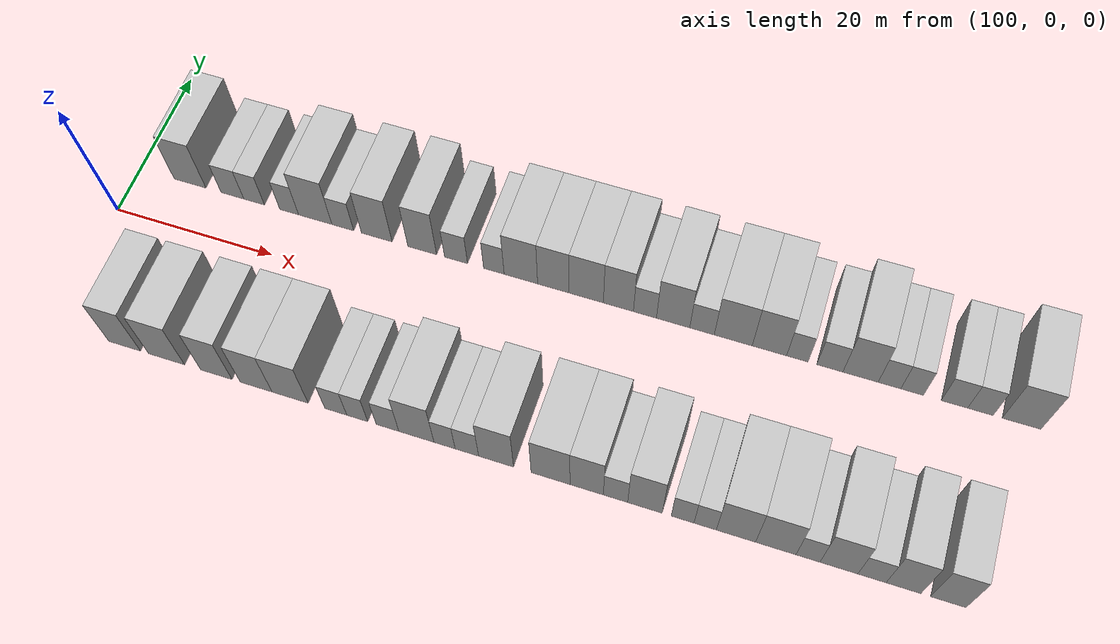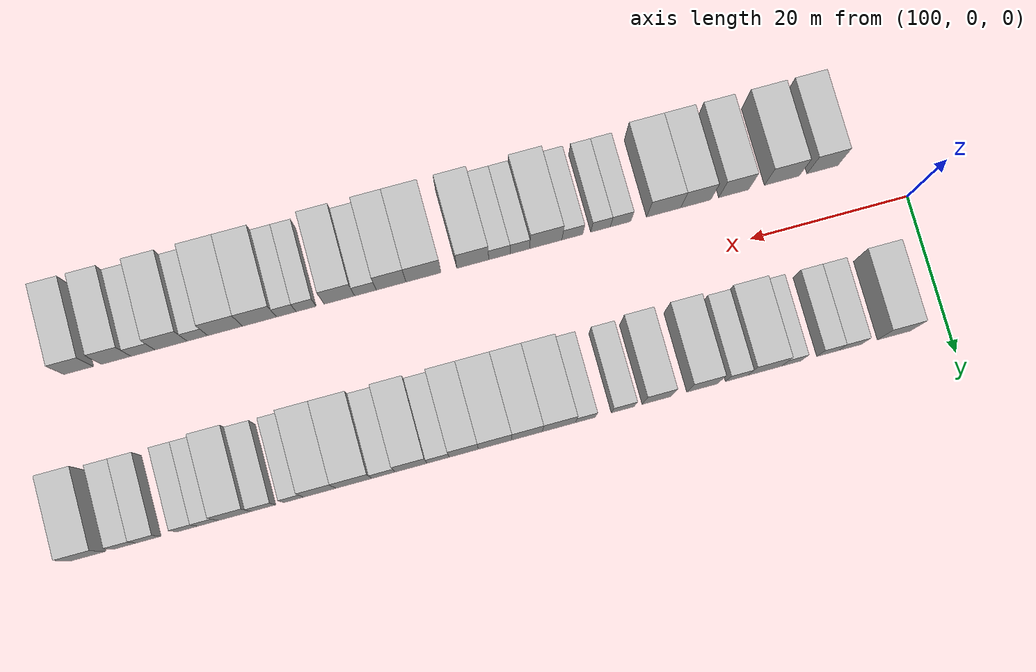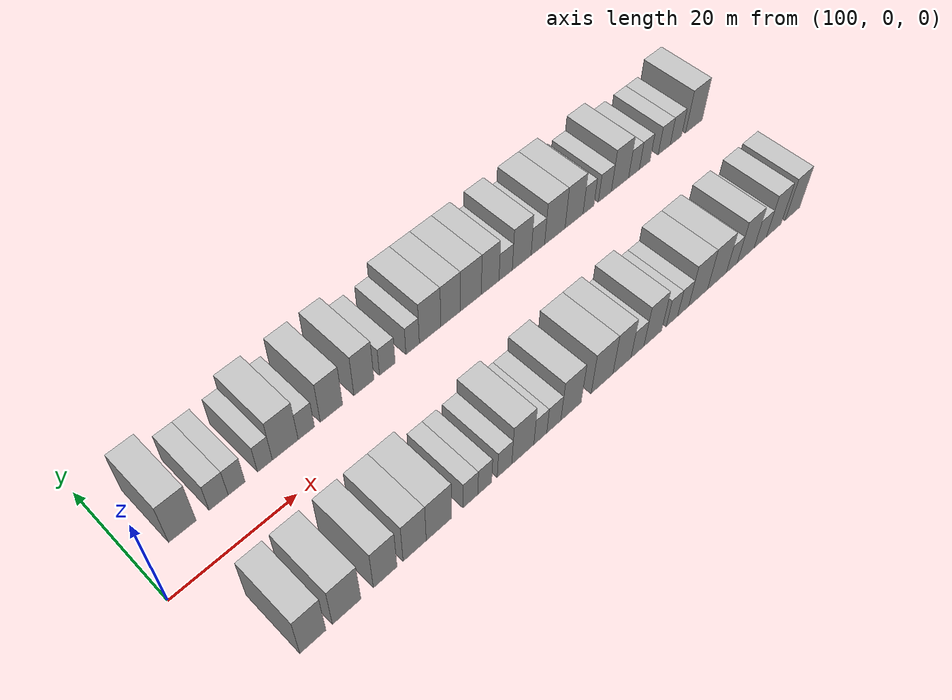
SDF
<sdf version="1.6">
 <world name="default">
  <model name="building_26">
   <static>1</static>
   <pose>106.6128 11.0000 0 0.000000 0.000000 1.570796</pose>
   <link name="link">
    <pose>0 0 4.50 0 0 0</pose>
    <collision name="collision"><geometry><box><size>10.0000 4.2061 9.0000</size></box></geometry></collision>
    <visual name="visual">
     <cast_shadows>0</cast_shadows>
     <geometry><box><size>10.0000 4.2061 9.0000</size></box></geometry>
     <material>
      <script>
       <uri>model://HANNAS_wall/materials/scripts</uri>
       <uri>model://HANNAS_wall/materials/textures</uri>
       <name>vrc/HANNAS_wall</name>
      </script>
     </material>
    </visual>
   </link>
  </model>
  <model name="building_27">
   <static>1</static>
   <pose>112.2107 11.0000 0 0.000000 0.000000 1.570796</pose>
   <link name="link">
    <pose>0 0 3.00 0 0 0</pose>
    <collision name="collision"><geometry><box><size>10.0000 2.9899 6.0000</size></box></geometry></collision>
    <visual name="visual">
     <cast_shadows>0</cast_shadows>
     <geometry><box><size>10.0000 2.9899 6.0000</size></box></geometry>
     <material>
      <script>
       <uri>model://HANNAS_wall/materials/scripts</uri>
       <uri>model://HANNAS_wall/materials/textures</uri>
       <name>vrc/HANNAS_wall</name>
      </script>
     </material>
    </visual>
   </link>
  </model>
  <model name="building_28">
   <static>1</static>
   <pose>115.0543 11.0000 0 0.000000 0.000000 1.570796</pose>
   <link name="link">
    <pose>0 0 3.00 0 0 0</pose>
    <collision name="collision"><geometry><box><size>10.0000 2.6972 6.0000</size></box></geometry></collision>
    <visual name="visual">
     <cast_shadows>0</cast_shadows>
     <geometry><box><size>10.0000 2.6972 6.0000</size></box></geometry>
     <material>
      <script>
       <uri>model://HANNAS_wall/materials/scripts</uri>
       <uri>model://HANNAS_wall/materials/textures</uri>
       <name>vrc/HANNAS_wall</name>
      </script>
     </material>
    </visual>
   </link>
  </model>
  <model name="building_29">
   <static>1</static>
   <pose>119.6240 11.0000 0 0.000000 0.000000 1.570796</pose>
   <link name="link">
    <pose>0 0 3.00 0 0 0</pose>
    <collision name="collision"><geometry><box><size>10.0000 2.4422 6.0000</size></box></geometry></collision>
    <visual name="visual">
     <cast_shadows>0</cast_shadows>
     <geometry><box><size>10.0000 2.4422 6.0000</size></box></geometry>
     <material>
      <script>
       <uri>model://HANNAS_wall/materials/scripts</uri>
       <uri>model://HANNAS_wall/materials/textures</uri>
       <name>vrc/HANNAS_wall</name>
      </script>
     </material>
    </visual>
   </link>
  </model>
  <model name="building_30">
   <static>1</static>
   <pose>122.9964 11.0000 0 0.000000 0.000000 1.570796</pose>
   <link name="link">
    <pose>0 0 4.50 0 0 0</pose>
    <collision name="collision"><geometry><box><size>10.0000 4.3027 9.0000</size></box></geometry></collision>
    <visual name="visual">
     <cast_shadows>0</cast_shadows>
     <geometry><box><size>10.0000 4.3027 9.0000</size></box></geometry>
     <material>
      <script>
       <uri>model://HANNAS_wall/materials/scripts</uri>
       <uri>model://HANNAS_wall/materials/textures</uri>
       <name>vrc/HANNAS_wall</name>
      </script>
     </material>
    </visual>
   </link>
  </model>
  <model name="building_31">
   <static>1</static>
   <pose>126.5361 11.0000 0 0.000000 0.000000 1.570796</pose>
   <link name="link">
    <pose>0 0 3.00 0 0 0</pose>
    <collision name="collision"><geometry><box><size>10.0000 2.7767 6.0000</size></box></geometry></collision>
    <visual name="visual">
     <cast_shadows>0</cast_shadows>
     <geometry><box><size>10.0000 2.7767 6.0000</size></box></geometry>
     <material>
      <script>
       <uri>model://HANNAS_wall/materials/scripts</uri>
       <uri>model://HANNAS_wall/materials/textures</uri>
       <name>vrc/HANNAS_wall</name>
      </script>
     </material>
    </visual>
   </link>
  </model>
  <model name="building_32">
   <static>1</static>
   <pose>130.8658 11.0000 0 0.000000 0.000000 1.570796</pose>
   <link name="link">
    <pose>0 0 4.50 0 0 0</pose>
    <collision name="collision"><geometry><box><size>10.0000 3.8825 9.0000</size></box></geometry></collision>
    <visual name="visual">
     <cast_shadows>0</cast_shadows>
     <geometry><box><size>10.0000 3.8825 9.0000</size></box></geometry>
     <material>
      <script>
       <uri>model://HANNAS_wall/materials/scripts</uri>
       <uri>model://HANNAS_wall/materials/textures</uri>
       <name>vrc/HANNAS_wall</name>
      </script>
     </material>
    </visual>
   </link>
  </model>
  <model name="building_33">
   <static>1</static>
   <pose>136.6136 11.0000 0 0.000000 0.000000 1.570796</pose>
   <link name="link">
    <pose>0 0 4.50 0 0 0</pose>
    <collision name="collision"><geometry><box><size>10.0000 3.6131 9.0000</size></box></geometry></collision>
    <visual name="visual">
     <cast_shadows>0</cast_shadows>
     <geometry><box><size>10.0000 3.6131 9.0000</size></box></geometry>
     <material>
      <script>
       <uri>model://HANNAS_wall/materials/scripts</uri>
       <uri>model://HANNAS_wall/materials/textures</uri>
       <name>vrc/HANNAS_wall</name>
      </script>
     </material>
    </visual>
   </link>
  </model>
  <model name="building_34">
   <static>1</static>
   <pose>140.8536 11.0000 0 0.000000 0.000000 1.570796</pose>
   <link name="link">
    <pose>0 0 3.00 0 0 0</pose>
    <collision name="collision"><geometry><box><size>10.0000 2.8669 6.0000</size></box></geometry></collision>
    <visual name="visual">
     <cast_shadows>0</cast_shadows>
     <geometry><box><size>10.0000 2.8669 6.0000</size></box></geometry>
     <material>
      <script>
       <uri>model://HANNAS_wall/materials/scripts</uri>
       <uri>model://HANNAS_wall/materials/textures</uri>
       <name>vrc/HANNAS_wall</name>
      </script>
     </material>
    </visual>
   </link>
  </model>
  <model name="building_35">
   <static>1</static>
   <pose>145.5535 11.0000 0 0.000000 0.000000 1.570796</pose>
   <link name="link">
    <pose>0 0 3.00 0 0 0</pose>
    <collision name="collision"><geometry><box><size>10.0000 2.5329 6.0000</size></box></geometry></collision>
    <visual name="visual">
     <cast_shadows>0</cast_shadows>
     <geometry><box><size>10.0000 2.5329 6.0000</size></box></geometry>
     <material>
      <script>
       <uri>model://HANNAS_wall/materials/scripts</uri>
       <uri>model://HANNAS_wall/materials/textures</uri>
       <name>vrc/HANNAS_wall</name>
      </script>
     </material>
    </visual>
   </link>
  </model>
  <model name="building_36">
   <static>1</static>
   <pose>148.8755 11.0000 0 0.000000 0.000000 1.570796</pose>
   <link name="link">
    <pose>0 0 4.50 0 0 0</pose>
    <collision name="collision"><geometry><box><size>10.0000 4.1110 9.0000</size></box></geometry></collision>
    <visual name="visual">
     <cast_shadows>0</cast_shadows>
     <geometry><box><size>10.0000 4.1110 9.0000</size></box></geometry>
     <material>
      <script>
       <uri>model://HANNAS_wall/materials/scripts</uri>
       <uri>model://HANNAS_wall/materials/textures</uri>
       <name>vrc/HANNAS_wall</name>
      </script>
     </material>
    </visual>
   </link>
  </model>
  <model name="building_37">
   <static>1</static>
   <pose>152.8462 11.0000 0 0.000000 0.000000 1.570796</pose>
   <link name="link">
    <pose>0 0 4.50 0 0 0</pose>
    <collision name="collision"><geometry><box><size>10.0000 3.8305 9.0000</size></box></geometry></collision>
    <visual name="visual">
     <cast_shadows>0</cast_shadows>
     <geometry><box><size>10.0000 3.8305 9.0000</size></box></geometry>
     <material>
      <script>
       <uri>model://HANNAS_wall/materials/scripts</uri>
       <uri>model://HANNAS_wall/materials/textures</uri>
       <name>vrc/HANNAS_wall</name>
      </script>
     </material>
    </visual>
   </link>
  </model>
  <model name="building_38">
   <static>1</static>
   <pose>156.8395 11.0000 0 0.000000 0.000000 1.570796</pose>
   <link name="link">
    <pose>0 0 4.50 0 0 0</pose>
    <collision name="collision"><geometry><box><size>10.0000 4.1561 9.0000</size></box></geometry></collision>
    <visual name="visual">
     <cast_shadows>0</cast_shadows>
     <geometry><box><size>10.0000 4.1561 9.0000</size></box></geometry>
     <material>
      <script>
       <uri>model://HANNAS_wall/materials/scripts</uri>
       <uri>model://HANNAS_wall/materials/textures</uri>
       <name>vrc/HANNAS_wall</name>
      </script>
     </material>
    </visual>
   </link>
  </model>
  <model name="building_39">
   <static>1</static>
   <pose>160.7221 11.0000 0 0.000000 0.000000 1.570796</pose>
   <link name="link">
    <pose>0 0 4.50 0 0 0</pose>
    <collision name="collision"><geometry><box><size>10.0000 3.6091 9.0000</size></box></geometry></collision>
    <visual name="visual">
     <cast_shadows>0</cast_shadows>
     <geometry><box><size>10.0000 3.6091 9.0000</size></box></geometry>
     <material>
      <script>
       <uri>model://HANNAS_wall/materials/scripts</uri>
       <uri>model://HANNAS_wall/materials/textures</uri>
       <name>vrc/HANNAS_wall</name>
      </script>
     </material>
    </visual>
   </link>
  </model>
  <model name="building_40">
   <static>1</static>
   <pose>163.9028 11.0000 0 0.000000 0.000000 1.570796</pose>
   <link name="link">
    <pose>0 0 3.00 0 0 0</pose>
    <collision name="collision"><geometry><box><size>10.0000 2.7522 6.0000</size></box></geometry></collision>
    <visual name="visual">
     <cast_shadows>0</cast_shadows>
     <geometry><box><size>10.0000 2.7522 6.0000</size></box></geometry>
     <material>
      <script>
       <uri>model://HANNAS_wall/materials/scripts</uri>
       <uri>model://HANNAS_wall/materials/textures</uri>
       <name>vrc/HANNAS_wall</name>
      </script>
     </material>
    </visual>
   </link>
  </model>
  <model name="building_41">
   <static>1</static>
   <pose>167.2548 11.0000 0 0.000000 0.000000 1.570796</pose>
   <link name="link">
    <pose>0 0 4.50 0 0 0</pose>
    <collision name="collision"><geometry><box><size>10.0000 3.9519 9.0000</size></box></geometry></collision>
    <visual name="visual">
     <cast_shadows>0</cast_shadows>
     <geometry><box><size>10.0000 3.9519 9.0000</size></box></geometry>
     <material>
      <script>
       <uri>model://HANNAS_wall/materials/scripts</uri>
       <uri>model://HANNAS_wall/materials/textures</uri>
       <name>vrc/HANNAS_wall</name>
      </script>
     </material>
    </visual>
   </link>
  </model>
  <model name="building_42">
   <static>1</static>
   <pose>170.6794 11.0000 0 0.000000 0.000000 1.570796</pose>
   <link name="link">
    <pose>0 0 3.00 0 0 0</pose>
    <collision name="collision"><geometry><box><size>10.0000 2.8972 6.0000</size></box></geometry></collision>
    <visual name="visual">
     <cast_shadows>0</cast_shadows>
     <geometry><box><size>10.0000 2.8972 6.0000</size></box></geometry>
     <material>
      <script>
       <uri>model://HANNAS_wall/materials/scripts</uri>
       <uri>model://HANNAS_wall/materials/textures</uri>
       <name>vrc/HANNAS_wall</name>
      </script>
     </material>
    </visual>
   </link>
  </model>
  <model name="building_43">
   <static>1</static>
   <pose>174.3533 11.0000 0 0.000000 0.000000 1.570796</pose>
   <link name="link">
    <pose>0 0 4.50 0 0 0</pose>
    <collision name="collision"><geometry><box><size>10.0000 4.4507 9.0000</size></box></geometry></collision>
    <visual name="visual">
     <cast_shadows>0</cast_shadows>
     <geometry><box><size>10.0000 4.4507 9.0000</size></box></geometry>
     <material>
      <script>
       <uri>model://HANNAS_wall/materials/scripts</uri>
       <uri>model://HANNAS_wall/materials/textures</uri>
       <name>vrc/HANNAS_wall</name>
      </script>
     </material>
    </visual>
   </link>
  </model>
  <model name="building_44">
   <static>1</static>
   <pose>178.5750 11.0000 0 0.000000 0.000000 1.570796</pose>
   <link name="link">
    <pose>0 0 4.50 0 0 0</pose>
    <collision name="collision"><geometry><box><size>10.0000 3.9926 9.0000</size></box></geometry></collision>
    <visual name="visual">
     <cast_shadows>0</cast_shadows>
     <geometry><box><size>10.0000 3.9926 9.0000</size></box></geometry>
     <material>
      <script>
       <uri>model://HANNAS_wall/materials/scripts</uri>
       <uri>model://HANNAS_wall/materials/textures</uri>
       <name>vrc/HANNAS_wall</name>
      </script>
     </material>
    </visual>
   </link>
  </model>
  <model name="building_45">
   <static>1</static>
   <pose>181.8112 11.0000 0 0.000000 0.000000 1.570796</pose>
   <link name="link">
    <pose>0 0 3.00 0 0 0</pose>
    <collision name="collision"><geometry><box><size>10.0000 2.4799 6.0000</size></box></geometry></collision>
    <visual name="visual">
     <cast_shadows>0</cast_shadows>
     <geometry><box><size>10.0000 2.4799 6.0000</size></box></geometry>
     <material>
      <script>
       <uri>model://HANNAS_wall/materials/scripts</uri>
       <uri>model://HANNAS_wall/materials/textures</uri>
       <name>vrc/HANNAS_wall</name>
      </script>
     </material>
    </visual>
   </link>
  </model>
  <model name="building_46">
   <static>1</static>
   <pose>185.5466 11.0000 0 0.000000 0.000000 1.570796</pose>
   <link name="link">
    <pose>0 0 3.00 0 0 0</pose>
    <collision name="collision"><geometry><box><size>10.0000 2.9910 6.0000</size></box></geometry></collision>
    <visual name="visual">
     <cast_shadows>0</cast_shadows>
     <geometry><box><size>10.0000 2.9910 6.0000</size></box></geometry>
     <material>
      <script>
       <uri>model://HANNAS_wall/materials/scripts</uri>
       <uri>model://HANNAS_wall/materials/textures</uri>
       <name>vrc/HANNAS_wall</name>
      </script>
     </material>
    </visual>
   </link>
  </model>
  <model name="building_47">
   <static>1</static>
   <pose>189.0549 11.0000 0 0.000000 0.000000 1.570796</pose>
   <link name="link">
    <pose>0 0 4.50 0 0 0</pose>
    <collision name="collision"><geometry><box><size>10.0000 4.0256 9.0000</size></box></geometry></collision>
    <visual name="visual">
     <cast_shadows>0</cast_shadows>
     <geometry><box><size>10.0000 4.0256 9.0000</size></box></geometry>
     <material>
      <script>
       <uri>model://HANNAS_wall/materials/scripts</uri>
       <uri>model://HANNAS_wall/materials/textures</uri>
       <name>vrc/HANNAS_wall</name>
      </script>
     </material>
    </visual>
   </link>
  </model>
  <model name="building_48">
   <static>1</static>
   <pose>192.3474 11.0000 0 0.000000 0.000000 1.570796</pose>
   <link name="link">
    <pose>0 0 3.00 0 0 0</pose>
    <collision name="collision"><geometry><box><size>10.0000 2.5594 6.0000</size></box></geometry></collision>
    <visual name="visual">
     <cast_shadows>0</cast_shadows>
     <geometry><box><size>10.0000 2.5594 6.0000</size></box></geometry>
     <material>
      <script>
       <uri>model://HANNAS_wall/materials/scripts</uri>
       <uri>model://HANNAS_wall/materials/textures</uri>
       <name>vrc/HANNAS_wall</name>
      </script>
     </material>
    </visual>
   </link>
  </model>
  <model name="building_49">
   <static>1</static>
   <pose>194.9057 11.0000 0 0.000000 0.000000 1.570796</pose>
   <link name="link">
    <pose>0 0 3.00 0 0 0</pose>
    <collision name="collision"><geometry><box><size>10.0000 2.5572 6.0000</size></box></geometry></collision>
    <visual name="visual">
     <cast_shadows>0</cast_shadows>
     <geometry><box><size>10.0000 2.5572 6.0000</size></box></geometry>
     <material>
      <script>
       <uri>model://HANNAS_wall/materials/scripts</uri>
       <uri>model://HANNAS_wall/materials/textures</uri>
       <name>vrc/HANNAS_wall</name>
      </script>
     </material>
    </visual>
   </link>
  </model>
  <model name="building_50">
   <static>1</static>
   <pose>199.6536 11.0000 0 0.000000 0.000000 1.570796</pose>
   <link name="link">
    <pose>0 0 3.00 0 0 0</pose>
    <collision name="collision"><geometry><box><size>10.0000 2.9386 6.0000</size></box></geometry></collision>
    <visual name="visual">
     <cast_shadows>0</cast_shadows>
     <geometry><box><size>10.0000 2.9386 6.0000</size></box></geometry>
     <material>
      <script>
       <uri>model://HANNAS_wall/materials/scripts</uri>
       <uri>model://HANNAS_wall/materials/textures</uri>
       <name>vrc/HANNAS_wall</name>
      </script>
     </material>
    </visual>
   </link>
  </model>
  <model name="building_51">
   <static>1</static>
   <pose>202.5419 11.0000 0 0.000000 0.000000 1.570796</pose>
   <link name="link">
    <pose>0 0 3.00 0 0 0</pose>
    <collision name="collision"><geometry><box><size>10.0000 2.8380 6.0000</size></box></geometry></collision>
    <visual name="visual">
     <cast_shadows>0</cast_shadows>
     <geometry><box><size>10.0000 2.8380 6.0000</size></box></geometry>
     <material>
      <script>
       <uri>model://HANNAS_wall/materials/scripts</uri>
       <uri>model://HANNAS_wall/materials/textures</uri>
       <name>vrc/HANNAS_wall</name>
      </script>
     </material>
    </visual>
   </link>
  </model>
  <model name="building_52">
   <static>1</static>
   <pose>207.0902 11.0000 0 0.000000 0.000000 1.570796</pose>
   <link name="link">
    <pose>0 0 4.50 0 0 0</pose>
    <collision name="collision"><geometry><box><size>10.0000 4.2587 9.0000</size></box></geometry></collision>
    <visual name="visual">
     <cast_shadows>0</cast_shadows>
     <geometry><box><size>10.0000 4.2587 9.0000</size></box></geometry>
     <material>
      <script>
       <uri>model://HANNAS_wall/materials/scripts</uri>
       <uri>model://HANNAS_wall/materials/textures</uri>
       <name>vrc/HANNAS_wall</name>
      </script>
     </material>
    </visual>
   </link>
  </model>
  <model name="building_80">
   <static>1</static>
   <pose>109.0482 -11.0000 0 0.000000 0.000000 1.570796</pose>
   <link name="link">
    <pose>0 0 4.50 0 0 0</pose>
    <collision name="collision"><geometry><box><size>10.0000 3.9735 9.0000</size></box></geometry></collision>
    <visual name="visual">
     <cast_shadows>0</cast_shadows>
     <geometry><box><size>10.0000 3.9735 9.0000</size></box></geometry>
     <material>
      <script>
       <uri>model://HANNAS_wall/materials/scripts</uri>
       <uri>model://HANNAS_wall/materials/textures</uri>
       <name>vrc/HANNAS_wall</name>
      </script>
     </material>
    </visual>
   </link>
  </model>
  <model name="building_81">
   <static>1</static>
   <pose>114.2683 -11.0000 0 0.000000 0.000000 1.570796</pose>
   <link name="link">
    <pose>0 0 4.50 0 0 0</pose>
    <collision name="collision"><geometry><box><size>10.0000 4.4666 9.0000</size></box></geometry></collision>
    <visual name="visual">
     <cast_shadows>0</cast_shadows>
     <geometry><box><size>10.0000 4.4666 9.0000</size></box></geometry>
     <material>
      <script>
       <uri>model://HANNAS_wall/materials/scripts</uri>
       <uri>model://HANNAS_wall/materials/textures</uri>
       <name>vrc/HANNAS_wall</name>
      </script>
     </material>
    </visual>
   </link>
  </model>
  <model name="building_82">
   <static>1</static>
   <pose>120.4238 -11.0000 0 0.000000 0.000000 1.570796</pose>
   <link name="link">
    <pose>0 0 4.50 0 0 0</pose>
    <collision name="collision"><geometry><box><size>10.0000 3.8443 9.0000</size></box></geometry></collision>
    <visual name="visual">
     <cast_shadows>0</cast_shadows>
     <geometry><box><size>10.0000 3.8443 9.0000</size></box></geometry>
     <material>
      <script>
       <uri>model://HANNAS_wall/materials/scripts</uri>
       <uri>model://HANNAS_wall/materials/textures</uri>
       <name>vrc/HANNAS_wall</name>
      </script>
     </material>
    </visual>
   </link>
  </model>
  <model name="building_83">
   <static>1</static>
   <pose>125.2826 -11.0000 0 0.000000 0.000000 1.570796</pose>
   <link name="link">
    <pose>0 0 4.50 0 0 0</pose>
    <collision name="collision"><geometry><box><size>10.0000 3.8733 9.0000</size></box></geometry></collision>
    <visual name="visual">
     <cast_shadows>0</cast_shadows>
     <geometry><box><size>10.0000 3.8733 9.0000</size></box></geometry>
     <material>
      <script>
       <uri>model://HANNAS_wall/materials/scripts</uri>
       <uri>model://HANNAS_wall/materials/textures</uri>
       <name>vrc/HANNAS_wall</name>
      </script>
     </material>
    </visual>
   </link>
  </model>
  <model name="building_84">
   <static>1</static>
   <pose>129.3939 -11.0000 0 0.000000 0.000000 1.570796</pose>
   <link name="link">
    <pose>0 0 4.50 0 0 0</pose>
    <collision name="collision"><geometry><box><size>10.0000 4.3494 9.0000</size></box></geometry></collision>
    <visual name="visual">
     <cast_shadows>0</cast_shadows>
     <geometry><box><size>10.0000 4.3494 9.0000</size></box></geometry>
     <material>
      <script>
       <uri>model://HANNAS_wall/materials/scripts</uri>
       <uri>model://HANNAS_wall/materials/textures</uri>
       <name>vrc/HANNAS_wall</name>
      </script>
     </material>
    </visual>
   </link>
  </model>
  <model name="building_85">
   <static>1</static>
   <pose>134.8802 -11.0000 0 0.000000 0.000000 1.570796</pose>
   <link name="link">
    <pose>0 0 3.00 0 0 0</pose>
    <collision name="collision"><geometry><box><size>10.0000 2.6233 6.0000</size></box></geometry></collision>
    <visual name="visual">
     <cast_shadows>0</cast_shadows>
     <geometry><box><size>10.0000 2.6233 6.0000</size></box></geometry>
     <material>
      <script>
       <uri>model://HANNAS_wall/materials/scripts</uri>
       <uri>model://HANNAS_wall/materials/textures</uri>
       <name>vrc/HANNAS_wall</name>
      </script>
     </material>
    </visual>
   </link>
  </model>
  <model name="building_86">
   <static>1</static>
   <pose>137.4331 -11.0000 0 0.000000 0.000000 1.570796</pose>
   <link name="link">
    <pose>0 0 3.00 0 0 0</pose>
    <collision name="collision"><geometry><box><size>10.0000 2.4825 6.0000</size></box></geometry></collision>
    <visual name="visual">
     <cast_shadows>0</cast_shadows>
     <geometry><box><size>10.0000 2.4825 6.0000</size></box></geometry>
     <material>
      <script>
       <uri>model://HANNAS_wall/materials/scripts</uri>
       <uri>model://HANNAS_wall/materials/textures</uri>
       <name>vrc/HANNAS_wall</name>
      </script>
     </material>
    </visual>
   </link>
  </model>
  <model name="building_87">
   <static>1</static>
   <pose>141.0068 -11.0000 0 0.000000 0.000000 1.570796</pose>
   <link name="link">
    <pose>0 0 3.00 0 0 0</pose>
    <collision name="collision"><geometry><box><size>10.0000 2.6648 6.0000</size></box></geometry></collision>
    <visual name="visual">
     <cast_shadows>0</cast_shadows>
     <geometry><box><size>10.0000 2.6648 6.0000</size></box></geometry>
     <material>
      <script>
       <uri>model://HANNAS_wall/materials/scripts</uri>
       <uri>model://HANNAS_wall/materials/textures</uri>
       <name>vrc/HANNAS_wall</name>
      </script>
     </material>
    </visual>
   </link>
  </model>
  <model name="building_88">
   <static>1</static>
   <pose>144.3948 -11.0000 0 0.000000 0.000000 1.570796</pose>
   <link name="link">
    <pose>0 0 4.50 0 0 0</pose>
    <collision name="collision"><geometry><box><size>10.0000 4.1112 9.0000</size></box></geometry></collision>
    <visual name="visual">
     <cast_shadows>0</cast_shadows>
     <geometry><box><size>10.0000 4.1112 9.0000</size></box></geometry>
     <material>
      <script>
       <uri>model://HANNAS_wall/materials/scripts</uri>
       <uri>model://HANNAS_wall/materials/textures</uri>
       <name>vrc/HANNAS_wall</name>
      </script>
     </material>
    </visual>
   </link>
  </model>
  <model name="building_89">
   <static>1</static>
   <pose>147.6831 -11.0000 0 0.000000 0.000000 1.570796</pose>
   <link name="link">
    <pose>0 0 3.00 0 0 0</pose>
    <collision name="collision"><geometry><box><size>10.0000 2.4655 6.0000</size></box></geometry></collision>
    <visual name="visual">
     <cast_shadows>0</cast_shadows>
     <geometry><box><size>10.0000 2.4655 6.0000</size></box></geometry>
     <material>
      <script>
       <uri>model://HANNAS_wall/materials/scripts</uri>
       <uri>model://HANNAS_wall/materials/textures</uri>
       <name>vrc/HANNAS_wall</name>
      </script>
     </material>
    </visual>
   </link>
  </model>
  <model name="building_90">
   <static>1</static>
   <pose>150.2721 -11.0000 0 0.000000 0.000000 1.570796</pose>
   <link name="link">
    <pose>0 0 3.00 0 0 0</pose>
    <collision name="collision"><geometry><box><size>10.0000 2.7125 6.0000</size></box></geometry></collision>
    <visual name="visual">
     <cast_shadows>0</cast_shadows>
     <geometry><box><size>10.0000 2.7125 6.0000</size></box></geometry>
     <material>
      <script>
       <uri>model://HANNAS_wall/materials/scripts</uri>
       <uri>model://HANNAS_wall/materials/textures</uri>
       <name>vrc/HANNAS_wall</name>
      </script>
     </material>
    </visual>
   </link>
  </model>
  <model name="building_91">
   <static>1</static>
   <pose>153.6358 -11.0000 0 0.000000 0.000000 1.570796</pose>
   <link name="link">
    <pose>0 0 4.50 0 0 0</pose>
    <collision name="collision"><geometry><box><size>10.0000 4.0150 9.0000</size></box></geometry></collision>
    <visual name="visual">
     <cast_shadows>0</cast_shadows>
     <geometry><box><size>10.0000 4.0150 9.0000</size></box></geometry>
     <material>
      <script>
       <uri>model://HANNAS_wall/materials/scripts</uri>
       <uri>model://HANNAS_wall/materials/textures</uri>
       <name>vrc/HANNAS_wall</name>
      </script>
     </material>
    </visual>
   </link>
  </model>
  <model name="building_92">
   <static>1</static>
   <pose>159.8468 -11.0000 0 0.000000 0.000000 1.570796</pose>
   <link name="link">
    <pose>0 0 4.50 0 0 0</pose>
    <collision name="collision"><geometry><box><size>10.0000 4.4070 9.0000</size></box></geometry></collision>
    <visual name="visual">
     <cast_shadows>0</cast_shadows>
     <geometry><box><size>10.0000 4.4070 9.0000</size></box></geometry>
     <material>
      <script>
       <uri>model://HANNAS_wall/materials/scripts</uri>
       <uri>model://HANNAS_wall/materials/textures</uri>
       <name>vrc/HANNAS_wall</name>
      </script>
     </material>
    </visual>
   </link>
  </model>
  <model name="building_93">
   <static>1</static>
   <pose>163.9283 -11.0000 0 0.000000 0.000000 1.570796</pose>
   <link name="link">
    <pose>0 0 4.50 0 0 0</pose>
    <collision name="collision"><geometry><box><size>10.0000 3.7560 9.0000</size></box></geometry></collision>
    <visual name="visual">
     <cast_shadows>0</cast_shadows>
     <geometry><box><size>10.0000 3.7560 9.0000</size></box></geometry>
     <material>
      <script>
       <uri>model://HANNAS_wall/materials/scripts</uri>
       <uri>model://HANNAS_wall/materials/textures</uri>
       <name>vrc/HANNAS_wall</name>
      </script>
     </material>
    </visual>
   </link>
  </model>
  <model name="building_94">
   <static>1</static>
   <pose>167.1692 -11.0000 0 0.000000 0.000000 1.570796</pose>
   <link name="link">
    <pose>0 0 3.00 0 0 0</pose>
    <collision name="collision"><geometry><box><size>10.0000 2.7258 6.0000</size></box></geometry></collision>
    <visual name="visual">
     <cast_shadows>0</cast_shadows>
     <geometry><box><size>10.0000 2.7258 6.0000</size></box></geometry>
     <material>
      <script>
       <uri>model://HANNAS_wall/materials/scripts</uri>
       <uri>model://HANNAS_wall/materials/textures</uri>
       <name>vrc/HANNAS_wall</name>
      </script>
     </material>
    </visual>
   </link>
  </model>
  <model name="building_95">
   <static>1</static>
   <pose>170.4502 -11.0000 0 0.000000 0.000000 1.570796</pose>
   <link name="link">
    <pose>0 0 4.50 0 0 0</pose>
    <collision name="collision"><geometry><box><size>10.0000 3.8362 9.0000</size></box></geometry></collision>
    <visual name="visual">
     <cast_shadows>0</cast_shadows>
     <geometry><box><size>10.0000 3.8362 9.0000</size></box></geometry>
     <material>
      <script>
       <uri>model://HANNAS_wall/materials/scripts</uri>
       <uri>model://HANNAS_wall/materials/textures</uri>
       <name>vrc/HANNAS_wall</name>
      </script>
     </material>
    </visual>
   </link>
  </model>
  <model name="building_96">
   <static>1</static>
   <pose>174.6226 -11.0000 0 0.000000 0.000000 1.570796</pose>
   <link name="link">
    <pose>0 0 3.00 0 0 0</pose>
    <collision name="collision"><geometry><box><size>10.0000 2.5087 6.0000</size></box></geometry></collision>
    <visual name="visual">
     <cast_shadows>0</cast_shadows>
     <geometry><box><size>10.0000 2.5087 6.0000</size></box></geometry>
     <material>
      <script>
       <uri>model://HANNAS_wall/materials/scripts</uri>
       <uri>model://HANNAS_wall/materials/textures</uri>
       <name>vrc/HANNAS_wall</name>
      </script>
     </material>
    </visual>
   </link>
  </model>
  <model name="building_97">
   <static>1</static>
   <pose>177.1027 -11.0000 0 0.000000 0.000000 1.570796</pose>
   <link name="link">
    <pose>0 0 3.00 0 0 0</pose>
    <collision name="collision"><geometry><box><size>10.0000 2.4513 6.0000</size></box></geometry></collision>
    <visual name="visual">
     <cast_shadows>0</cast_shadows>
     <geometry><box><size>10.0000 2.4513 6.0000</size></box></geometry>
     <material>
      <script>
       <uri>model://HANNAS_wall/materials/scripts</uri>
       <uri>model://HANNAS_wall/materials/textures</uri>
       <name>vrc/HANNAS_wall</name>
      </script>
     </material>
    </visual>
   </link>
  </model>
  <model name="building_98">
   <static>1</static>
   <pose>180.4630 -11.0000 0 0.000000 0.000000 1.570796</pose>
   <link name="link">
    <pose>0 0 4.50 0 0 0</pose>
    <collision name="collision"><geometry><box><size>10.0000 4.2694 9.0000</size></box></geometry></collision>
    <visual name="visual">
     <cast_shadows>0</cast_shadows>
     <geometry><box><size>10.0000 4.2694 9.0000</size></box></geometry>
     <material>
      <script>
       <uri>model://HANNAS_wall/materials/scripts</uri>
       <uri>model://HANNAS_wall/materials/textures</uri>
       <name>vrc/HANNAS_wall</name>
      </script>
     </material>
    </visual>
   </link>
  </model>
  <model name="building_99">
   <static>1</static>
   <pose>184.7781 -11.0000 0 0.000000 0.000000 1.570796</pose>
   <link name="link">
    <pose>0 0 4.50 0 0 0</pose>
    <collision name="collision"><geometry><box><size>10.0000 4.3607 9.0000</size></box></geometry></collision>
    <visual name="visual">
     <cast_shadows>0</cast_shadows>
     <geometry><box><size>10.0000 4.3607 9.0000</size></box></geometry>
     <material>
      <script>
       <uri>model://HANNAS_wall/materials/scripts</uri>
       <uri>model://HANNAS_wall/materials/textures</uri>
       <name>vrc/HANNAS_wall</name>
      </script>
     </material>
    </visual>
   </link>
  </model>
  <model name="building_100">
   <static>1</static>
   <pose>188.2448 -11.0000 0 0.000000 0.000000 1.570796</pose>
   <link name="link">
    <pose>0 0 3.00 0 0 0</pose>
    <collision name="collision"><geometry><box><size>10.0000 2.5727 6.0000</size></box></geometry></collision>
    <visual name="visual">
     <cast_shadows>0</cast_shadows>
     <geometry><box><size>10.0000 2.5727 6.0000</size></box></geometry>
     <material>
      <script>
       <uri>model://HANNAS_wall/materials/scripts</uri>
       <uri>model://HANNAS_wall/materials/textures</uri>
       <name>vrc/HANNAS_wall</name>
      </script>
     </material>
    </visual>
   </link>
  </model>
  <model name="building_101">
   <static>1</static>
   <pose>191.5451 -11.0000 0 0.000000 0.000000 1.570796</pose>
   <link name="link">
    <pose>0 0 4.50 0 0 0</pose>
    <collision name="collision"><geometry><box><size>10.0000 4.0280 9.0000</size></box></geometry></collision>
    <visual name="visual">
     <cast_shadows>0</cast_shadows>
     <geometry><box><size>10.0000 4.0280 9.0000</size></box></geometry>
     <material>
      <script>
       <uri>model://HANNAS_wall/materials/scripts</uri>
       <uri>model://HANNAS_wall/materials/textures</uri>
       <name>vrc/HANNAS_wall</name>
      </script>
     </material>
    </visual>
   </link>
  </model>
  <model name="building_102">
   <static>1</static>
   <pose>195.0518 -11.0000 0 0.000000 0.000000 1.570796</pose>
   <link name="link">
    <pose>0 0 3.00 0 0 0</pose>
    <collision name="collision"><geometry><box><size>10.0000 2.9854 6.0000</size></box></geometry></collision>
    <visual name="visual">
     <cast_shadows>0</cast_shadows>
     <geometry><box><size>10.0000 2.9854 6.0000</size></box></geometry>
     <material>
      <script>
       <uri>model://HANNAS_wall/materials/scripts</uri>
       <uri>model://HANNAS_wall/materials/textures</uri>
       <name>vrc/HANNAS_wall</name>
      </script>
     </material>
    </visual>
   </link>
  </model>
  <model name="building_103">
   <static>1</static>
   <pose>198.3782 -11.0000 0 0.000000 0.000000 1.570796</pose>
   <link name="link">
    <pose>0 0 4.50 0 0 0</pose>
    <collision name="collision"><geometry><box><size>10.0000 3.6676 9.0000</size></box></geometry></collision>
    <visual name="visual">
     <cast_shadows>0</cast_shadows>
     <geometry><box><size>10.0000 3.6676 9.0000</size></box></geometry>
     <material>
      <script>
       <uri>model://HANNAS_wall/materials/scripts</uri>
       <uri>model://HANNAS_wall/materials/textures</uri>
       <name>vrc/HANNAS_wall</name>
      </script>
     </material>
    </visual>
   </link>
  </model>
  <model name="building_104">
   <static>1</static>
   <pose>203.0577 -11.0000 0 0.000000 0.000000 1.570796</pose>
   <link name="link">
    <pose>0 0 4.50 0 0 0</pose>
    <collision name="collision"><geometry><box><size>10.0000 3.6913 9.0000</size></box></geometry></collision>
    <visual name="visual">
     <cast_shadows>0</cast_shadows>
     <geometry><box><size>10.0000 3.6913 9.0000</size></box></geometry>
     <material>
      <script>
       <uri>model://HANNAS_wall/materials/scripts</uri>
       <uri>model://HANNAS_wall/materials/textures</uri>
       <name>vrc/HANNAS_wall</name>
      </script>
     </material>
    </visual>
   </link>
  </model>
 </world>
</sdf>
